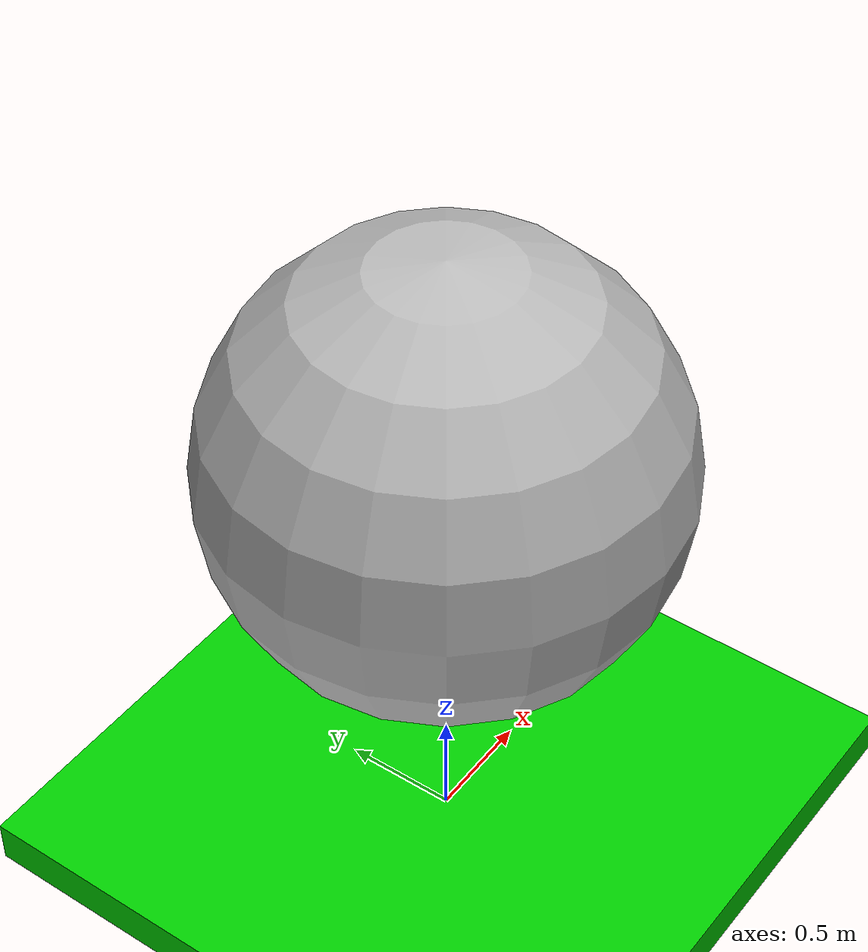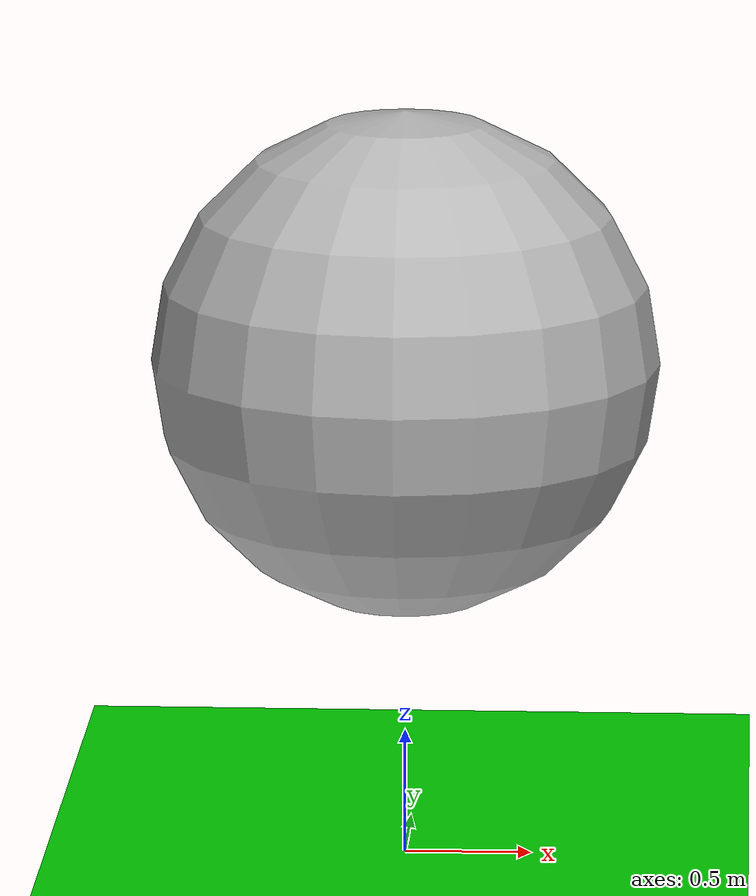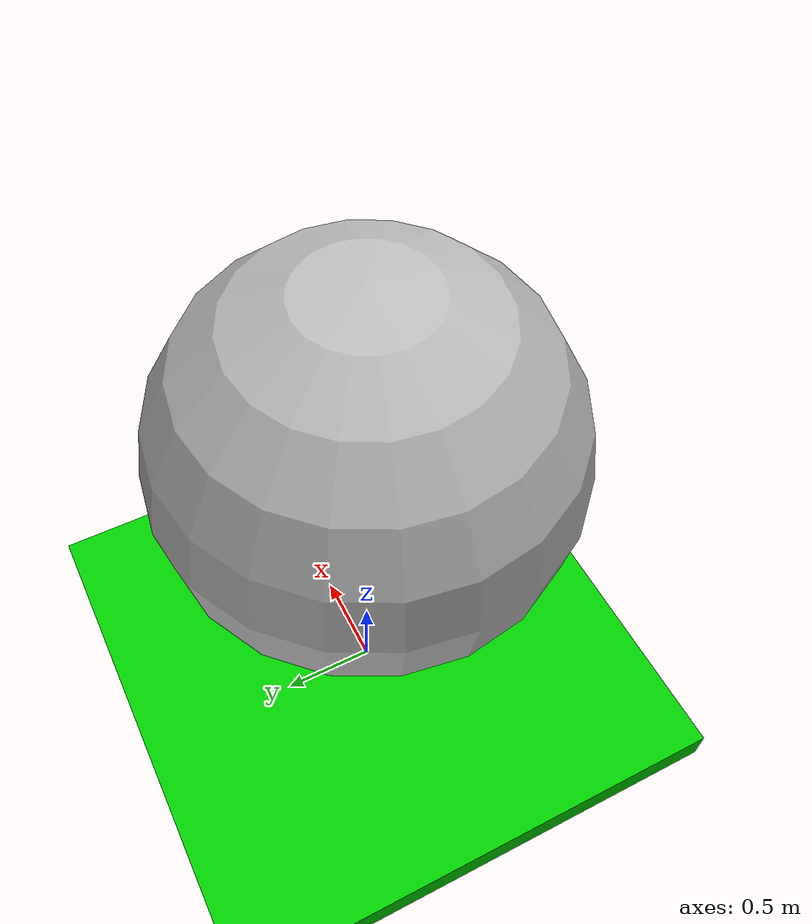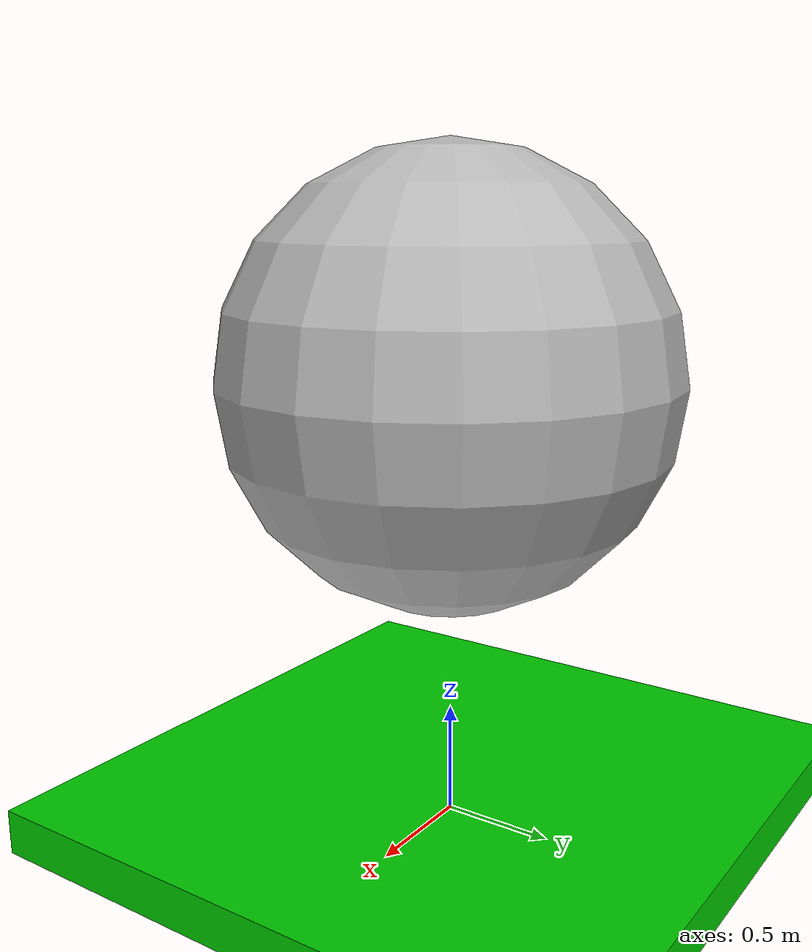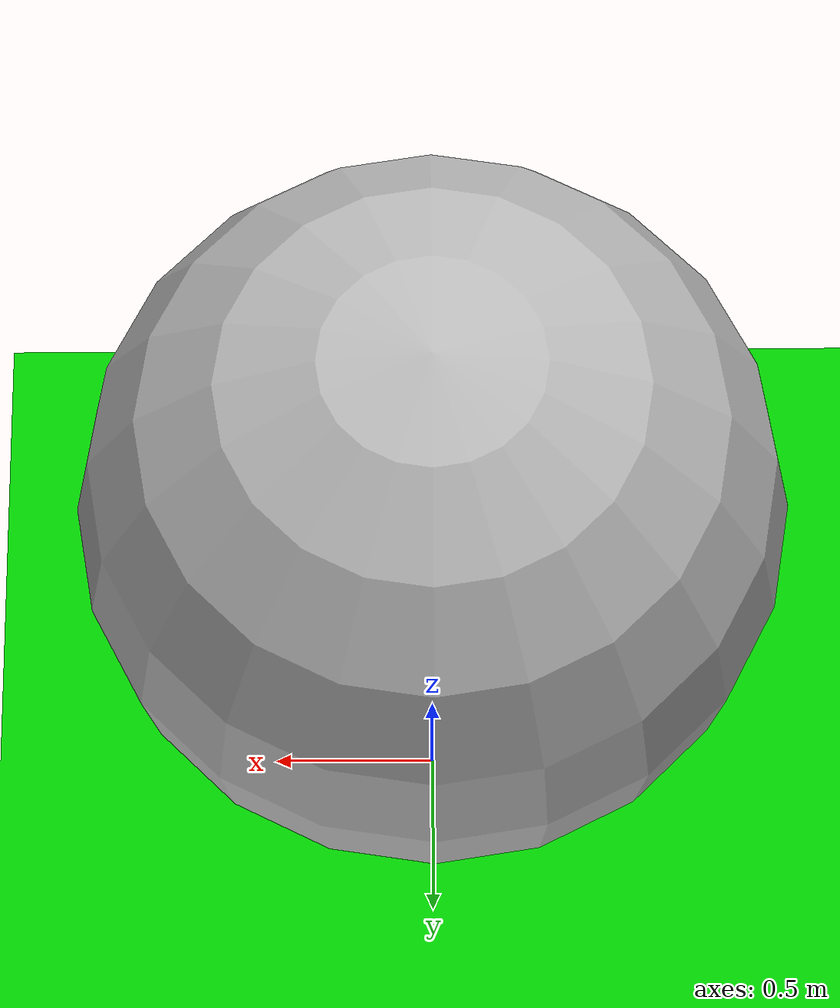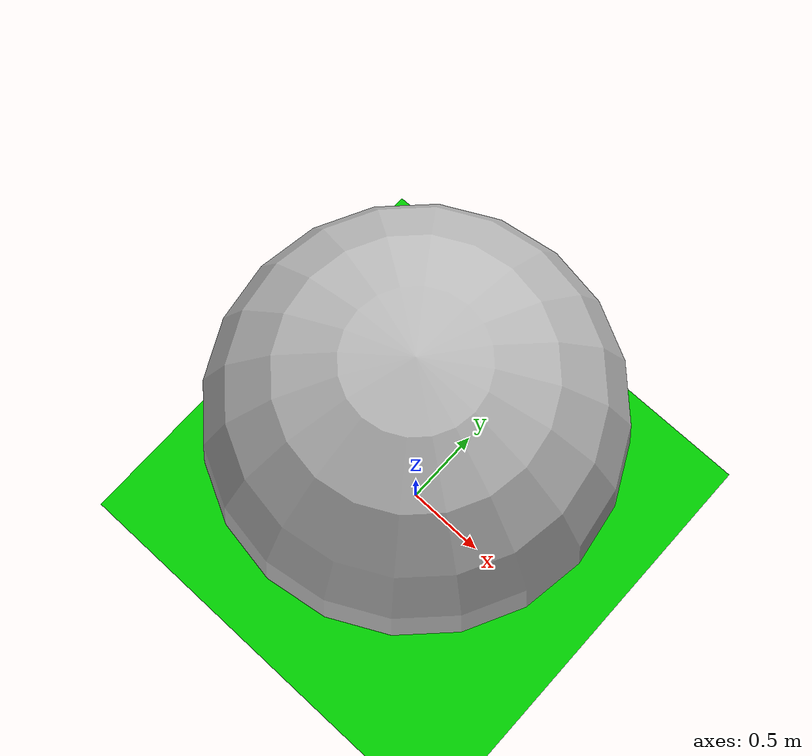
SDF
<?xml version="1.0" ?>
<sdf version="1.6">
  <world name="breadcrumbs_levels">

    <physics name="1ms" type="ode">
      <max_step_size>0.001</max_step_size>
      <real_time_factor>0</real_time_factor>
    </physics>
    <plugin
      filename="gz-sim-physics-system"
      name="gz::sim::systems::Physics">
    </plugin>
    <plugin
      filename="gz-sim-user-commands-system"
      name="gz::sim::systems::UserCommands">
    </plugin>
    <plugin
      filename="gz-sim-scene-broadcaster-system"
      name="gz::sim::systems::SceneBroadcaster">
    </plugin>

    <model name="tile_1">
      <pose>0 0 0.1 0 0 0</pose>
      <static>true</static>
      <link name="link">
        <collision name="collision">
          <geometry>
            <box>
              <size>10 10 0.2</size>
            </box>
          </geometry>
        </collision>
        <visual name="visual">
          <geometry>
            <box>
              <size>10 10 0.2</size>
            </box>
          </geometry>
          <material>
            <ambient>0.8 0.8 0.8 1</ambient>
            <diffuse>0.0 0.8 0.0 1</diffuse>
            <specular>0.8 0.8 0.8 1</specular>
          </material>
        </visual>
      </link>
      <plugin filename="gz-sim-breadcrumbs-system" name="gz::sim::systems::Breadcrumbs">
       <max_deployments>3</max_deployments>
       <disable_physics_time>15</disable_physics_time>
       <allow_renaming>true</allow_renaming>
       <breadcrumb>
         <sdf version="1.6">
          <model name="B1">
            <pose>0 0 5 0 0 0</pose>
            <link name='body'>
              <visual name='visual'>
                <geometry>
                  <box>
                    <size>0.3 0.3 0.5</size>
                  </box>
                </geometry>
              </visual>
              <collision name='collision'>
                <geometry>
                  <box>
                    <size>0.3 0.3 0.5</size>
                  </box>
                </geometry>
              </collision>
            </link>
          </model>
        </sdf>
       </breadcrumb>
      </plugin>
    </model>

    <model name="sphere">
      <pose>0 0 2 0 0 0</pose>
      <static>true</static>
      <link name="sphere_link">
        <collision name="sphere_collision">
          <geometry>
            <sphere>
              <radius>1.0</radius>
            </sphere>
          </geometry>
        </collision>
        <visual name="sphere_visual">
          <geometry>
            <sphere>
              <radius>1.0</radius>
            </sphere>
          </geometry>
        </visual>
      </link>
    </model>

    <plugin name="gz::sim" filename="dummy">
      <performer name="perf1">
        <ref>sphere</ref>
        <geometry>
          <box>
            <size>4 4 2</size>
          </box>
        </geometry>
      </performer>
      <level name="level1">
        <pose>0 0 2.5 0 0 0</pose>
        <geometry>
          <box>
            <size>10 10 10</size>
          </box>
        </geometry>
        <buffer>2</buffer>
        <ref>tile_1</ref>
      </level>
    </plugin>
  </world>
</sdf>
